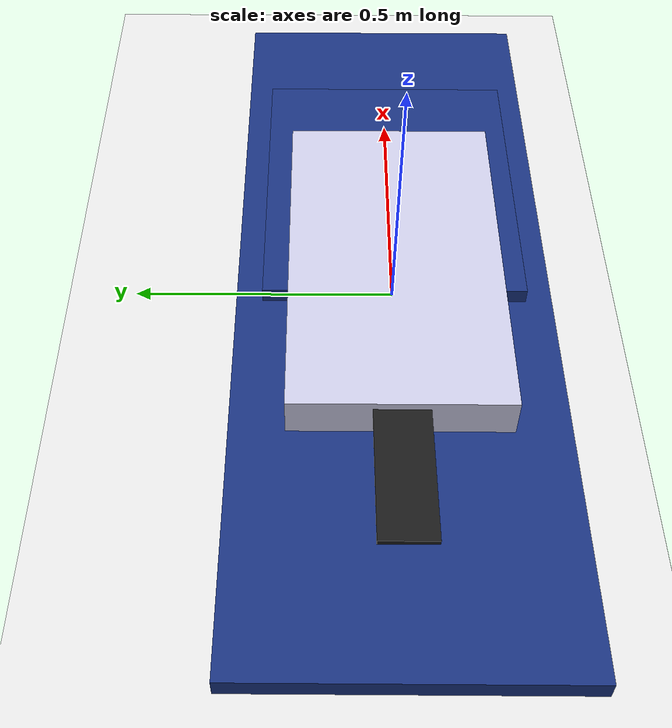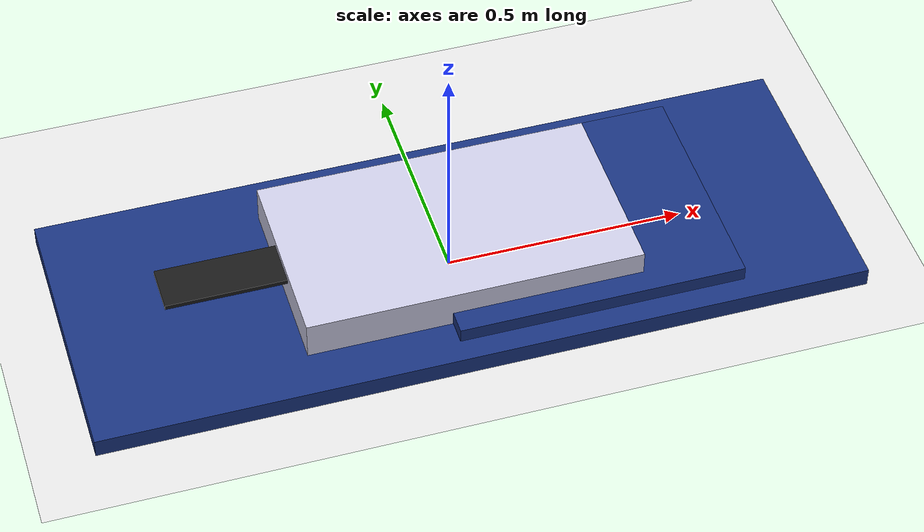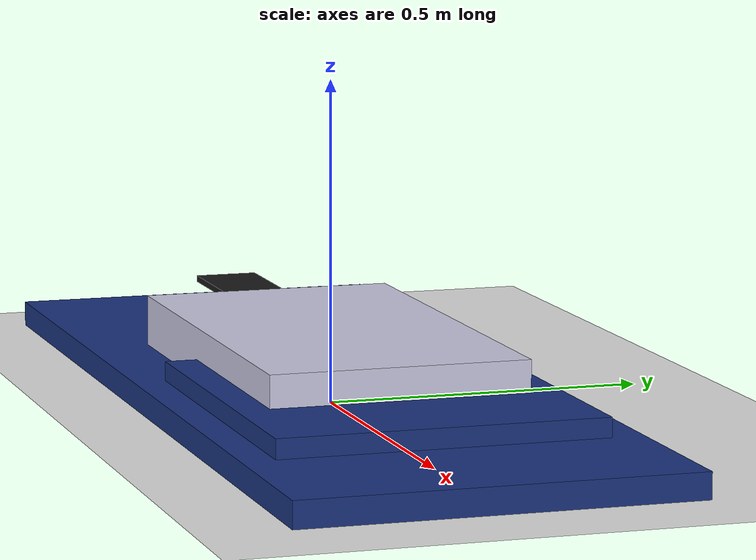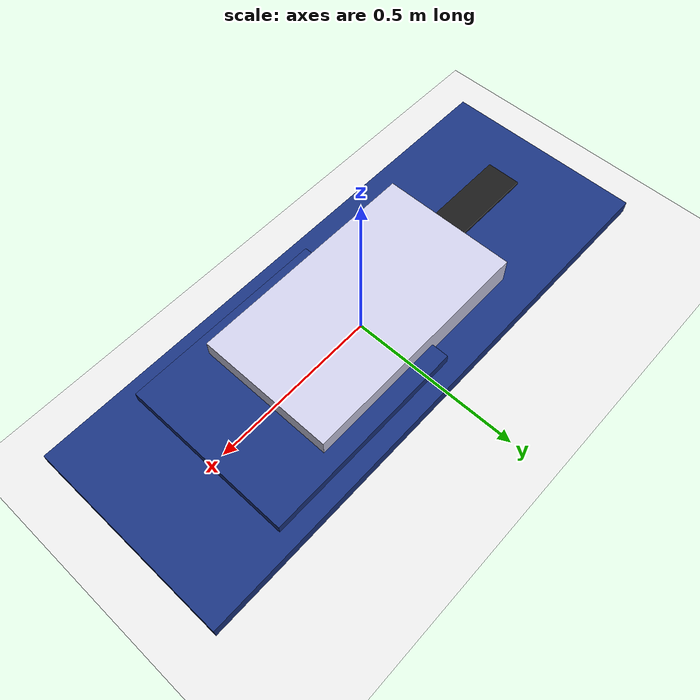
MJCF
<?xml version="1.0"?>
<mujoco model="four_wheeler">
  <option timestep="0.01"/>
  <default>
    <joint limited="false"/>
    <geom contype="0" conaffinity="0"/>
  </default>
  <worldbody>
    <light pos="0 0 1" dir="0 0 -1"/>
    <geom name="floor" type="plane" size="10 10 0.1" rgba="0.9 0.9 0.9 1"/>
    <body name="chassis" pos="0 0 0.02">
      <!-- main chassis -->
      <geom name="chassis_main" type="box" size="0.8 0.3 0.02" rgba="0.1 0.2 0.5 1" mass="5"/>
      <!-- cabin -->
      <geom name="cabin" type="box" size="0.35 0.2 0.04" pos="0 0 0.06" rgba="0.8 0.8 0.9 1"/>
      <!-- hood -->
      <geom name="hood" type="box" size="0.3 0.25 0.015" pos="0.25 0 0.035" rgba="0.1 0.2 0.5 1"/>
      <!-- spoiler -->
      <geom name="spoiler" type="box" size="0.25 0.05 0.005" pos="-0.35 0 0.08" rgba="0.1 0.1 0.1 1"/>
      <!-- front left wheel -->
      <body name="fl_wheel" pos="-0.35 0.2 -0.02">
        <!-- tire -->
        <geom name="fl_tire" type="cylinder" size="0.09 0.03" rgba="0.05 0.05 0.05 1"/>
        <!-- rim -->
        <geom name="fl_rim" type="cylinder" size="0.05 0.025" pos="0 0 0" rgba="0.7 0.7 0.7 1"/>
        <joint name="fl_hinge" axis="0 1 0" type="hinge"/>
      </body>
      <!-- front right wheel -->
      <body name="fr_wheel" pos="-0.35 -0.2 -0.02">
        <geom name="fr_tire" type="cylinder" size="0.09 0.03" rgba="0.05 0.05 0.05 1"/>
        <geom name="fr_rim" type="cylinder" size="0.05 0.025" pos="0 0 0" rgba="0.7 0.7 0.7 1"/>
        <joint name="fr_hinge" axis="0 1 0" type="hinge"/>
      </body>
      <!-- rear left wheel -->
      <body name="rl_wheel" pos="0.35 0.2 -0.02">
        <geom name="rl_tire" type="cylinder" size="0.09 0.03" rgba="0.05 0.05 0.05 1"/>
        <geom name="rl_rim" type="cylinder" size="0.05 0.025" pos="0 0 0" rgba="0.7 0.7 0.7 1"/>
        <joint name="rl_hinge" axis="0 1 0" type="hinge"/>
      </body>
      <!-- rear right wheel -->
      <body name="rr_wheel" pos="0.35 -0.2 -0.02">
        <geom name="rr_tire" type="cylinder" size="0.09 0.03" rgba="0.05 0.05 0.05 1"/>
        <geom name="rr_rim" type="cylinder" size="0.05 0.025" pos="0 0 0" rgba="0.7 0.7 0.7 1"/>
        <joint name="rr_hinge" axis="0 1 0" type="hinge"/>
      </body>
    </body>
  </worldbody>
  <actuator>
    <motor joint="fl_hinge" ctrlrange="-1 1" ctrllimited="true"/>
    <motor joint="fr_hinge" ctrlrange="-1 1" ctrllimited="true"/>
    <motor joint="rl_hinge" ctrlrange="-1 1" ctrllimited="true"/>
    <motor joint="rr_hinge" ctrlrange="-1 1" ctrllimited="true"/>
  </actuator>
</mujoco>
